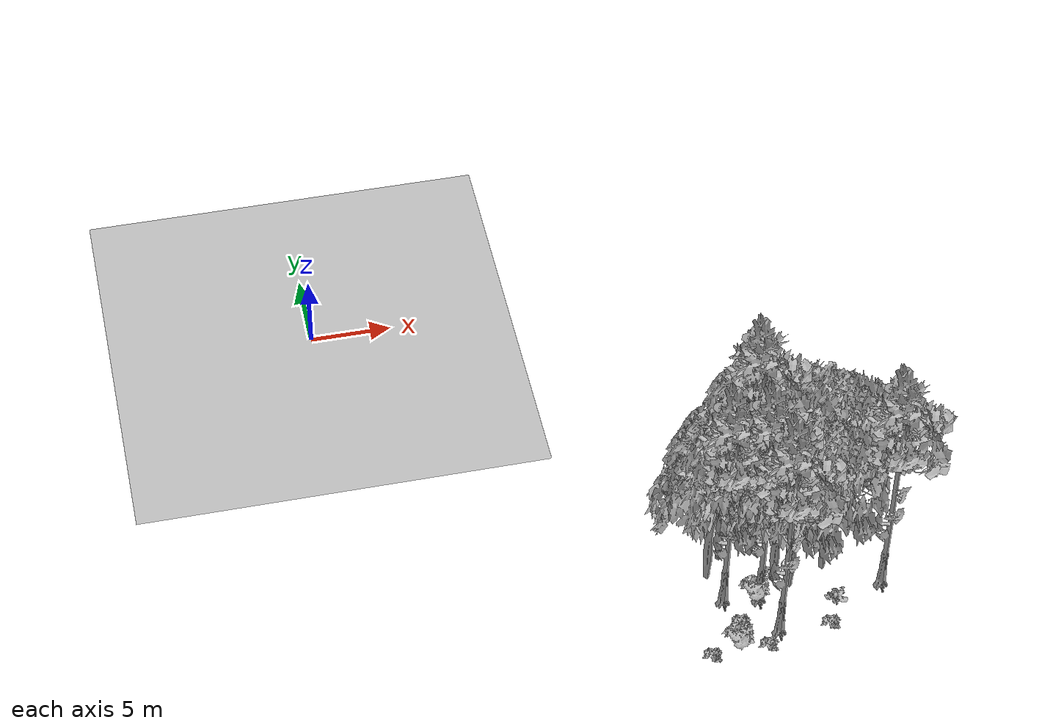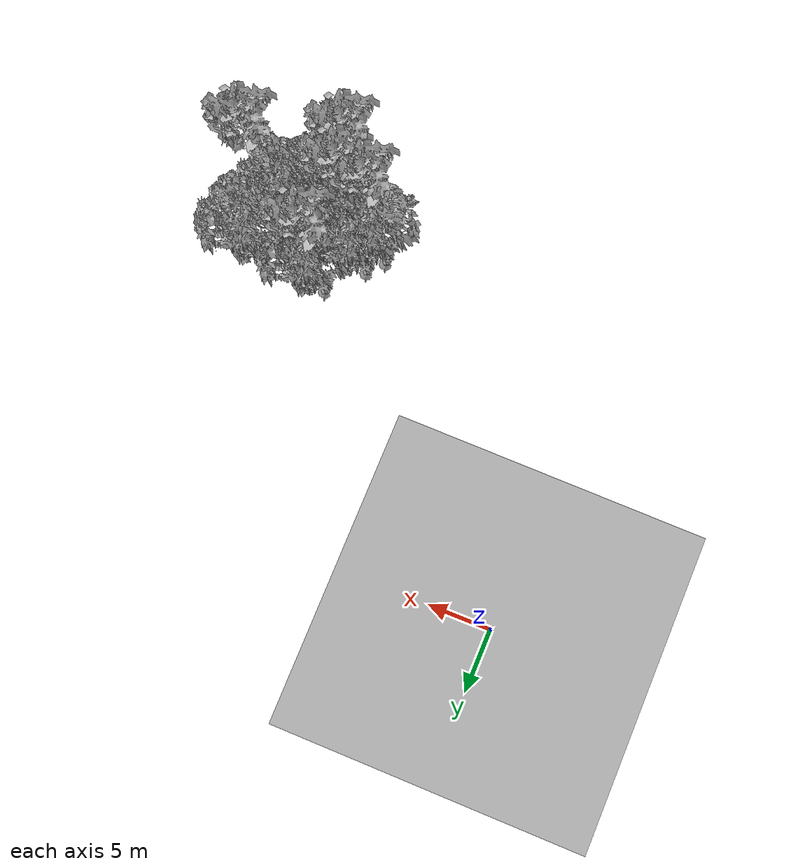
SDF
<sdf version="1.7">
 <world name="default">
  <model name="ground_plane">
   <static>1</static>
   <link name="link">
    <collision name="collision">
     <pose>-50 0 0 0 -0 0</pose>
     <geometry><plane><normal>0 0 1</normal><size>80 80</size></plane></geometry>
     <surface><contact><ode><min_depth>0.01</min_depth><max_vel>0</max_vel></ode></contact></surface>
    </collision>
    <visual name="grass">
     <cast_shadows>0</cast_shadows>
     <geometry>
      <mesh>
       <scale>0.46714285714285714 0.46714285714285714 0.1</scale>
       <uri>file://grass_plane/meshes/grass_plane.dae</uri>
      </mesh>
     </geometry>
    </visual>
   </link>
  </model>
  <model name="Tree 74">
   <static>1</static>
   <pose>23.098440653991382 -24.232195434958193 0 1.57079 -0 0</pose>
   <link name="link">
    <collision name="collision">
     <geometry><mesh><scale>3.5 5 3.5</scale><uri>model://tree_2/meshes/tree_2.obj</uri></mesh></geometry>
    </collision>
    <visual name="visual">
     <geometry><mesh><scale>3.5 5 3.5</scale><uri>model://tree_2/meshes/tree_2.obj</uri></mesh></geometry>
    </visual>
   </link>
  </model>
  <model name="Tree 75">
   <static>1</static>
   <pose>22.053426033997297 -25.346019597150633 0 1.57079 -0 0</pose>
   <link name="link">
    <collision name="collision">
     <geometry><mesh><scale>3.5 5 3.5</scale><uri>model://tree_9/meshes/tree_9.obj</uri></mesh></geometry>
    </collision>
    <visual name="visual">
     <geometry><mesh><scale>3.5 5 3.5</scale><uri>model://tree_9/meshes/tree_9.obj</uri></mesh></geometry>
    </visual>
   </link>
  </model>
  <model name="Tree 168">
   <static>1</static>
   <pose>27.6138886299494 -20.2223960763901 0 1.57079 -0 0</pose>
   <link name="link">
    <collision name="collision">
     <geometry><mesh><scale>3.5 5 3.5</scale><uri>model://tree_2/meshes/tree_2.obj</uri></mesh></geometry>
    </collision>
    <visual name="visual">
     <geometry><mesh><scale>3.5 5 3.5</scale><uri>model://tree_2/meshes/tree_2.obj</uri></mesh></geometry>
    </visual>
   </link>
  </model>
  <model name="Tree 246">
   <static>1</static>
   <pose>26.144918127285223 -23.933310549662792 0 1.57079 -0 0</pose>
   <link name="link">
    <collision name="collision">
     <geometry><mesh><scale>3.5 5 3.5</scale><uri>model://tree_2/meshes/tree_2.obj</uri></mesh></geometry>
    </collision>
    <visual name="visual">
     <geometry><mesh><scale>3.5 5 3.5</scale><uri>model://tree_2/meshes/tree_2.obj</uri></mesh></geometry>
    </visual>
   </link>
  </model>
  <model name="Tree 260">
   <static>1</static>
   <pose>22.27361825617873 -22.112529371670824 0 1.57079 -0 0</pose>
   <link name="link">
    <collision name="collision">
     <geometry><mesh><scale>3.5 5 3.5</scale><uri>model://tree_2/meshes/tree_2.obj</uri></mesh></geometry>
    </collision>
    <visual name="visual">
     <geometry><mesh><scale>3.5 5 3.5</scale><uri>model://tree_2/meshes/tree_2.obj</uri></mesh></geometry>
    </visual>
   </link>
  </model>
  <model name="Tree 280">
   <static>1</static>
   <pose>22.605973767036403 -27.788113576522974 0 1.57079 -0 0</pose>
   <link name="link">
    <collision name="collision">
     <geometry><mesh><scale>3.5 5 3.5</scale><uri>model://tree_9/meshes/tree_9.obj</uri></mesh></geometry>
    </collision>
    <visual name="visual">
     <geometry><mesh><scale>3.5 5 3.5</scale><uri>model://tree_9/meshes/tree_9.obj</uri></mesh></geometry>
    </visual>
   </link>
  </model>
  <model name="Tree 283">
   <static>1</static>
   <pose>22.805583753852318 -20.469970356501772 0 1.57079 -0 0</pose>
   <link name="link">
    <collision name="collision">
     <geometry><mesh><scale>3.5 5 3.5</scale><uri>model://tree_9/meshes/tree_9.obj</uri></mesh></geometry>
    </collision>
    <visual name="visual">
     <geometry><mesh><scale>3.5 5 3.5</scale><uri>model://tree_9/meshes/tree_9.obj</uri></mesh></geometry>
    </visual>
   </link>
  </model>
  <model name="Tree 395">
   <static>1</static>
   <pose>23.905139905853133 -24.838357813210436 0 1.57079 -0 0</pose>
   <link name="link">
    <collision name="collision">
     <geometry><mesh><scale>3.5 5 3.5</scale><uri>model://tree_2/meshes/tree_2.obj</uri></mesh></geometry>
    </collision>
    <visual name="visual">
     <geometry><mesh><scale>3.5 5 3.5</scale><uri>model://tree_2/meshes/tree_2.obj</uri></mesh></geometry>
    </visual>
   </link>
  </model>
  <model name="Tree 446">
   <static>1</static>
   <pose>19.983429632431907 -25.0619150747795 0 1.57079 -0 0</pose>
   <link name="link">
    <collision name="collision">
     <geometry><mesh><scale>3.5 5 3.5</scale><uri>model://tree_9/meshes/tree_9.obj</uri></mesh></geometry>
    </collision>
    <visual name="visual">
     <geometry><mesh><scale>3.5 5 3.5</scale><uri>model://tree_9/meshes/tree_9.obj</uri></mesh></geometry>
    </visual>
   </link>
  </model>
  <model name="Tree 472">
   <static>1</static>
   <pose>20.397299816979363 -22.07953666131803 0 1.57079 -0 0</pose>
   <link name="link">
    <collision name="collision">
     <geometry><mesh><scale>3.5 5 3.5</scale><uri>model://tree_2/meshes/tree_2.obj</uri></mesh></geometry>
    </collision>
    <visual name="visual">
     <geometry><mesh><scale>3.5 5 3.5</scale><uri>model://tree_2/meshes/tree_2.obj</uri></mesh></geometry>
    </visual>
   </link>
  </model>
  <model name="Tree 579">
   <static>1</static>
   <pose>22.646089469026613 -19.621569797426552 0 1.57079 -0 0</pose>
   <link name="link">
    <collision name="collision">
     <geometry><mesh><scale>3.5 5 3.5</scale><uri>model://tree_2/meshes/tree_2.obj</uri></mesh></geometry>
    </collision>
    <visual name="visual">
     <geometry><mesh><scale>3.5 5 3.5</scale><uri>model://tree_2/meshes/tree_2.obj</uri></mesh></geometry>
    </visual>
   </link>
  </model>
  <model name="Tree 580">
   <static>1</static>
   <pose>29.342792620340177 -25.61412817235027 0 1.57079 -0 0</pose>
   <link name="link">
    <collision name="collision">
     <geometry><mesh><scale>3.5 5 3.5</scale><uri>model://tree_9/meshes/tree_9.obj</uri></mesh></geometry>
    </collision>
    <visual name="visual">
     <geometry><mesh><scale>3.5 5 3.5</scale><uri>model://tree_9/meshes/tree_9.obj</uri></mesh></geometry>
    </visual>
   </link>
  </model>
  <model name="Tree 581">
   <static>1</static>
   <pose>19.371863900006502 -23.273413254080914 0 1.57079 -0 0</pose>
   <link name="link">
    <collision name="collision">
     <geometry><mesh><scale>3.5 5 3.5</scale><uri>model://tree_2/meshes/tree_2.obj</uri></mesh></geometry>
    </collision>
    <visual name="visual">
     <geometry><mesh><scale>3.5 5 3.5</scale><uri>model://tree_2/meshes/tree_2.obj</uri></mesh></geometry>
    </visual>
   </link>
  </model>
  <model name="Bush 58">
   <static>1</static>
   <pose>21.70225157414516 -28.809955325197212 0 1.57079 -0 0</pose>
   <link name="link">
    <collision name="collision">
     <geometry><mesh><scale>2 2 2</scale><uri>model://bush_2/meshes/bush_2.obj</uri></mesh></geometry>
     <surface><contact><collide_without_contact>false</collide_without_contact></contact></surface>
    </collision>
    <visual name="visual">
     <geometry><mesh><scale>2 2 2</scale><uri>model://bush_2/meshes/bush_2.obj</uri></mesh></geometry>
    </visual>
   </link>
  </model>
  <model name="Bush 82">
   <static>1</static>
   <pose>24.290599352272736 -20.800535540879306 0 1.57079 -0 0</pose>
   <link name="link">
    <collision name="collision">
     <geometry><mesh><scale>2 2 2</scale><uri>model://bush_2/meshes/bush_2.obj</uri></mesh></geometry>
     <surface><contact><collide_without_contact>false</collide_without_contact></contact></surface>
    </collision>
    <visual name="visual">
     <geometry><mesh><scale>2 2 2</scale><uri>model://bush_2/meshes/bush_2.obj</uri></mesh></geometry>
    </visual>
   </link>
  </model>
  <model name="Bush 133">
   <static>1</static>
   <pose>26.291865441542456 -26.821370143301486 0 1.57079 -0 0</pose>
   <link name="link">
    <collision name="collision">
     <geometry><mesh><scale>2 2 2</scale><uri>model://bush_0/meshes/bush_0.obj</uri></mesh></geometry>
     <surface><contact><collide_without_contact>false</collide_without_contact></contact></surface>
    </collision>
    <visual name="visual">
     <geometry><mesh><scale>2 2 2</scale><uri>model://bush_0/meshes/bush_0.obj</uri></mesh></geometry>
    </visual>
   </link>
  </model>
  <model name="Bush 175">
   <static>1</static>
   <pose>25.610272781277644 -28.022435039207856 0 1.57079 -0 0</pose>
   <link name="link">
    <collision name="collision">
     <geometry><mesh><scale>2 2 2</scale><uri>model://bush_2/meshes/bush_2.obj</uri></mesh></geometry>
     <surface><contact><collide_without_contact>false</collide_without_contact></contact></surface>
    </collision>
    <visual name="visual">
     <geometry><mesh><scale>2 2 2</scale><uri>model://bush_2/meshes/bush_2.obj</uri></mesh></geometry>
    </visual>
   </link>
  </model>
  <model name="Bush 182">
   <static>1</static>
   <pose>18.355409661727542 -28.913877634675664 0 1.57079 -0 0</pose>
   <link name="link">
    <collision name="collision">
     <geometry><mesh><scale>2 2 2</scale><uri>model://bush_2/meshes/bush_2.obj</uri></mesh></geometry>
     <surface><contact><collide_without_contact>false</collide_without_contact></contact></surface>
    </collision>
    <visual name="visual">
     <geometry><mesh><scale>2 2 2</scale><uri>model://bush_2/meshes/bush_2.obj</uri></mesh></geometry>
    </visual>
   </link>
  </model>
  <model name="Bush 259">
   <static>1</static>
   <pose>22.948593975098177 -19.323141634701393 0 1.57079 -0 0</pose>
   <link name="link">
    <collision name="collision">
     <geometry><mesh><scale>2 2 2</scale><uri>model://bush_2/meshes/bush_2.obj</uri></mesh></geometry>
     <surface><contact><collide_without_contact>false</collide_without_contact></contact></surface>
    </collision>
    <visual name="visual">
     <geometry><mesh><scale>2 2 2</scale><uri>model://bush_2/meshes/bush_2.obj</uri></mesh></geometry>
    </visual>
   </link>
  </model>
  <model name="Bush 352">
   <static>1</static>
   <pose>21.8086932883336 -25.45043282006567 0 1.57079 -0 0</pose>
   <link name="link">
    <collision name="collision">
     <geometry><mesh><scale>2 2 2</scale><uri>model://bush_1/meshes/bush_1.obj</uri></mesh></geometry>
     <surface><contact><collide_without_contact>false</collide_without_contact></contact></surface>
    </collision>
    <visual name="visual">
     <geometry><mesh><scale>2 2 2</scale><uri>model://bush_1/meshes/bush_1.obj</uri></mesh></geometry>
    </visual>
   </link>
  </model>
  <model name="Bush 434">
   <static>1</static>
   <pose>23.110390691172142 -23.889273466825706 0 1.57079 -0 0</pose>
   <link name="link">
    <collision name="collision">
     <geometry><mesh><scale>2 2 2</scale><uri>model://bush_2/meshes/bush_2.obj</uri></mesh></geometry>
     <surface><contact><collide_without_contact>false</collide_without_contact></contact></surface>
    </collision>
    <visual name="visual">
     <geometry><mesh><scale>2 2 2</scale><uri>model://bush_2/meshes/bush_2.obj</uri></mesh></geometry>
    </visual>
   </link>
  </model>
  <model name="Bush 443">
   <static>1</static>
   <pose>20.02603247027794 -28.579446905861214 0 1.57079 -0 0</pose>
   <link name="link">
    <collision name="collision">
     <geometry><mesh><scale>2 2 2</scale><uri>model://bush_1/meshes/bush_1.obj</uri></mesh></geometry>
     <surface><contact><collide_without_contact>false</collide_without_contact></contact></surface>
    </collision>
    <visual name="visual">
     <geometry><mesh><scale>2 2 2</scale><uri>model://bush_1/meshes/bush_1.obj</uri></mesh></geometry>
    </visual>
   </link>
  </model>
  <model name="Bush 481">
   <static>1</static>
   <pose>20.527606868477797 -26.9440038702375 0 1.57079 -0 0</pose>
   <link name="link">
    <collision name="collision">
     <geometry><mesh><scale>2 2 2</scale><uri>model://bush_2/meshes/bush_2.obj</uri></mesh></geometry>
     <surface><contact><collide_without_contact>false</collide_without_contact></contact></surface>
    </collision>
    <visual name="visual">
     <geometry><mesh><scale>2 2 2</scale><uri>model://bush_2/meshes/bush_2.obj</uri></mesh></geometry>
    </visual>
   </link>
  </model>
 </world>
</sdf>
